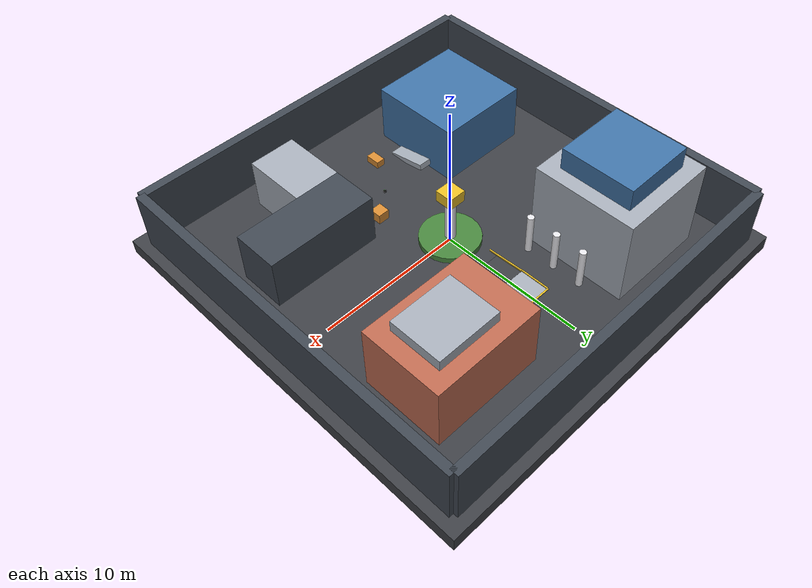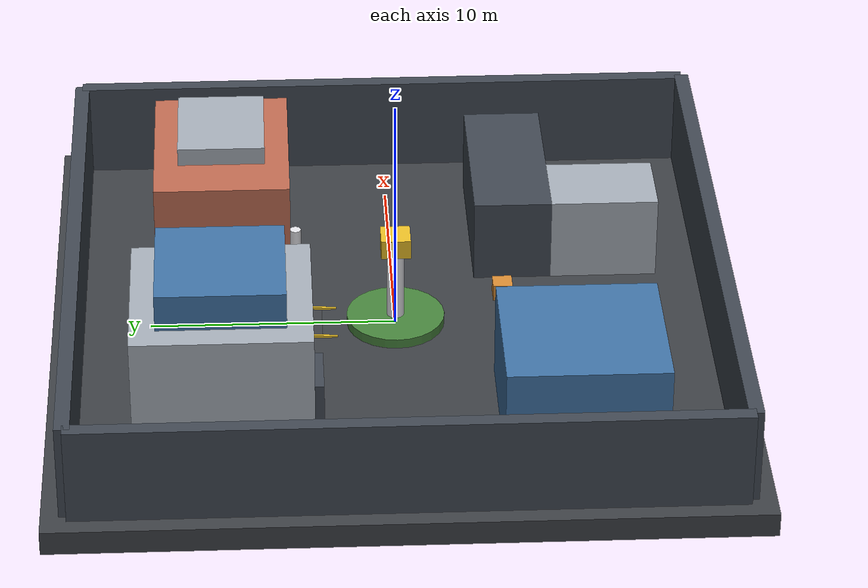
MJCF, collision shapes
<mujoco model="urban_proving_ground">
  <compiler angle="radian" meshdir="../models/turtlebot3/meshes" autolimits="true"/>

  <option timestep="0.005" integrator="implicitfast" gravity="0 0 -9.81"/>

  <visual>
    <headlight diffuse="0.85 0.85 0.85" ambient="0.45 0.45 0.45" specular="0.15 0.15 0.15"/>
    <rgba haze="0 0 0 0"/>
    <global azimuth="-135" elevation="-25"/>
    <map znear="0.0005" zfar="60.0"/>
  </visual>

  <asset>
    <!-- 天空盒与环境贴图 -->
    <texture type="skybox" builtin="gradient" rgb1="0.5 0.72 0.95" rgb2="0.2 0.35 0.55" width="512" height="512"/>
    <texture name="asphalt_tex" type="2d" builtin="checker" rgb1="0.22 0.23 0.25" rgb2="0.26 0.27 0.29" width="512" height="512" mark="cross" markrgb="0.38 0.38 0.38"/>
    <material name="asphalt_mat" texture="asphalt_tex" texrepeat="12 12" reflectance="0.0" roughness="0.9"/>

    <!-- 建筑与装饰材质 -->
    <material name="building_grey" rgba="0.65 0.68 0.72 1" reflectance="0.1"/>
    <material name="building_glass" rgba="0.25 0.45 0.65 1" reflectance="0.4"/>
    <material name="building_brick" rgba="0.75 0.42 0.32 1" reflectance="0.05"/>
    <material name="building_dark" rgba="0.25 0.28 0.32 1" reflectance="0.1"/>
    <material name="pillar_white" rgba="0.9 0.9 0.92 1" reflectance="0.2"/>
    <material name="curb_yellow" rgba="0.92 0.75 0.15 1" reflectance="0.1"/>
    <material name="grass_green" rgba="0.28 0.52 0.24 1" reflectance="0.05"/>
    <material name="obstacle_box" rgba="0.85 0.55 0.2 1" reflectance="0.1"/>
  </asset>

  <worldbody>
    <!-- 定向日光主光源与环境补光 -->
    <light pos="5 -5 18" dir="-0.3 0.3 -1" directional="true" diffuse="1.05 1.02 0.98" specular="0.35 0.35 0.35" castshadow="true"/>
    <light pos="-6 6 12" dir="0.3 -0.3 -0.8" directional="true" diffuse="0.45 0.48 0.52" specular="0.1 0.1 0.1"/>

    <!-- 全局高空透视监控相机 (Overview Cam) -->
    <camera name="overview_cam" pos="0 -15 12" xyaxes="1 0 0 0 0.64 0.77" fovy="65"/>

    <!-- 1. 地面基座 (28m x 28m 实心沥青厚板地面，无重叠、无透空、无镜面倒影，绝对平整) -->
    <geom name="ground" type="box" size="14 14 0.5" pos="0 0 -0.5" material="asphalt_mat" friction="1.2 0.005 0.0001"/>

    <!-- 2. 外围封闭建筑群围墙 (高 4.0m，彻底防止小车出界，为激光雷达提供远距离大平面约束) -->
    <geom name="wall_north" type="box" size="13 0.3 2.0" pos="0 13 2.0" material="building_dark"/>
    <geom name="wall_south" type="box" size="13 0.3 2.0" pos="0 -13 2.0" material="building_dark"/>
    <geom name="wall_east"  type="box" size="0.3 13 2.0" pos="13 0 2.0" material="building_dark"/>
    <geom name="wall_west"  type="box" size="0.3 13 2.0" pos="-13 0 2.0" material="building_dark"/>

    <!-- 3. 西北部：高层科技塔楼 A (高 6.5m，带有双层阶梯与外挑平台) -->
    <body name="building_A" pos="-7 7 0">
      <geom type="box" size="3.5 3.5 3.0" pos="0 0 3.0" material="building_grey"/>
      <geom type="box" size="2.5 2.5 1.5" pos="0 0 6.0" material="building_glass"/>
      <!-- 外凸裙楼与入口门廊，创造丰富垂直与水平角点 -->
      <geom type="box" size="1.2 0.3 1.2" pos="0 -3.6 1.2" material="building_dark"/>
    </body>

    <!-- 4. 东北部：现代商业综合体 B (高 4.5m，砖红色质感，凹凸窗套立面) -->
    <body name="building_B" pos="7 7 0">
      <geom type="box" size="3.8 2.8 2.25" pos="0 0 2.25" material="building_brick"/>
      <geom type="box" size="2.2 1.8 1.0" pos="0.5 0 4.25" material="building_grey"/>
      <!-- 街道转角侧边防撞柱 -->
      <geom type="cylinder" size="0.15 0.6" pos="-3.2 -2.2 0.6" material="pillar_white"/>
      <geom type="cylinder" size="0.15 0.6" pos="-3.2 -1.2 0.6" material="pillar_white"/>
    </body>

    <!-- 5. 东南部：L 型院落与走廊街道 C (高 3.5m，形成狭窄巷道 Alleyway) -->
    <body name="building_C" pos="7 -7 0">
      <geom type="box" size="3.8 1.6 1.75" pos="0 2.0 1.75" material="building_dark"/>
      <geom type="box" size="1.6 2.2 1.75" pos="-2.2 -1.8 1.75" material="building_grey"/>
    </body>

    <!-- 6. 西南部：立体研发独栋 D + 缓坡台阶 Ramp (测试 IMU 俯仰角与坡道 3D 点云) -->
    <body name="building_D" pos="-7 -7 0">
      <geom type="box" size="3.2 3.2 2.0" pos="0 0 2.0" material="building_glass"/>
      <!-- 缓坡坡道 (倾角约 12 度，长 2.5m) -->
      <geom type="box" size="0.9 1.4 0.2" pos="3.2 0 0.2" euler="0.2 0 0" material="building_grey"/>
    </body>

    <!-- 7. 中央环岛与绿化景观 (构建天然环形道路闭环 Loop Closure) -->
    <body name="central_plaza" pos="0 0 0">
      <!-- 环岛中心圆台 -->
      <geom type="cylinder" size="2.0 0.2" pos="0 0 0.2" material="grass_green"/>
      <!-- 环岛中央雕塑立柱 (极佳的激光角点中心参考物) -->
      <geom type="cylinder" size="0.35 1.8" pos="0 0 1.8" material="pillar_white"/>
      <geom type="box" size="0.6 0.6 0.4" pos="0 0 3.8" material="curb_yellow"/>
    </body>

    <!-- 8. 立柱走廊 (Colonnade of Pillars：测试多线激光雷达角点与圆柱特征提取) -->
    <body name="colonnade" pos="0 0 0">
      <!-- 沿西侧主干道排列的一组标准化圆柱 -->
      <geom type="cylinder" size="0.22 1.4" pos="-2.8 4.0 1.4" material="pillar_white"/>
      <geom type="cylinder" size="0.22 1.4" pos="-2.8 6.0 1.4" material="pillar_white"/>
      <geom type="cylinder" size="0.22 1.4" pos="-2.8 8.0 1.4" material="pillar_white"/>

      <!-- 沿东侧主干道排列的立柱 -->
      <geom type="cylinder" size="0.22 1.4" pos="2.8 4.0 1.4" material="pillar_white"/>
      <geom type="cylinder" size="0.22 1.4" pos="2.8 6.0 1.4" material="pillar_white"/>
      <geom type="cylinder" size="0.22 1.4" pos="2.8 8.0 1.4" material="pillar_white"/>
    </body>

    <!-- 9. 街道局部几何障碍体 (用于测试局部避障规划与点云遮挡推算) -->
    <body name="street_obstacles" pos="0 0 0">
      <!-- 南侧道路上的几何箱子 -->
      <geom type="box" size="0.4 0.4 0.35" pos="1.8 -4.5 0.35" material="obstacle_box"/>
      <geom type="box" size="0.3 0.5 0.25" pos="-1.5 -8.5 0.25" material="obstacle_box"/>
      <!-- 北侧道路立柱附近的障碍圆柱桶 (移至立柱走廊内侧以保证高台通道宽敞) -->
      <geom type="cylinder" size="0.25 0.4" pos="2.0 5.5 0.4" material="curb_yellow"/>
    </body>

    <!-- 10. 北侧立体观景台与上坡坡道 (测试 2.5D 高程感知、越障爬坡与高台停驻) -->
    <body name="elevated_ramp_platform" pos="0 0 0">
      <!-- 零台阶平顺入地缓坡 (宽 2.0m，坡度仅 3.4 度/0.06rad，南端深沉入地消灭突唇，北侧无缝平顺衔接高台 Z=0.12m) -->
      <geom name="access_ramp" type="box" size="1.0 1.30 0.04" pos="0 3.7 0.002" euler="0.060 0 0" material="asphalt_mat" friction="1.5 0.005 0.0001"/>
      <geom name="access_ramp_base" type="box" size="1.05 1.30 0.10" pos="0 3.7 -0.10" group="3" material="building_dark"/>
      <!-- 高台基座 (标高 Z=0.12m，尺寸 2.2m x 2.0m，中心 Y=6.0，Z_pos=0.06) -->
      <geom name="platform_deck" type="box" size="1.1 1.0 0.06" pos="0 6.0 0.06" material="building_grey" friction="1.5 0.005 0.0001"/>
            <!-- 缓坡西侧防护警示护栏 -->
      <geom name="ramp_curb_west" type="box" size="0.05 1.30 0.06" pos="-1.05 3.7 0.08" euler="0.060 0 0" material="curb_yellow"/>
      <!-- 缓坡东侧防护警示护栏 -->
      <geom name="ramp_curb_east" type="box" size="0.05 1.30 0.06" pos="1.05 3.7 0.08" euler="0.060 0 0" material="curb_yellow"/>
      <!-- 高台西侧防护警示边沿 -->
      <geom type="box" size="0.05 1.0 0.03" pos="-1.1 6.0 0.15" material="curb_yellow"/>
      <!-- 高台东侧防护警示边沿 -->
      <geom type="box" size="0.05 1.0 0.03" pos="1.1 6.0 0.15" material="curb_yellow"/>
      <!-- 高台北侧防护警示边沿 -->
      <geom type="box" size="1.1 0.05 0.03" pos="0 7.05 0.15" material="curb_yellow"/>
    </body>
  </worldbody>

  <!-- 引入 TurtleBot3 Burger 移动机器人完整模型 -->
  <include file="../models/turtlebot3/turtlebot3_burger.xml"/>
</mujoco>

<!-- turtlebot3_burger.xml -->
<mujoco model="turtlebot3_burger">
  <compiler angle="radian" autolimits="true"/>

  <default>
    <default class="visual">
      <geom group="1" type="mesh" contype="0" conaffinity="0"/>
    </default>
    <default class="collision">
      <geom group="3" rgba="0 0 0 0" solref="0.01 1" solimp="0.9 0.95 0.001 0.5 2"/>
    </default>
    <default class="wheel">
      <geom group="0" type="cylinder" size="0.033 0.009" zaxis="0 1 0" friction="1.5 0.005 0.0001" condim="3" solref="0.01 1" solimp="0.9 0.95 0.001 0.5 2"/>
    </default>
  </default>

  <asset>
    <!-- 3D 视觉网格资产 (自包含 STL，相对路径由引用上层 meshdir 统一定义) -->
    <mesh name="burger_base" file="bases/burger_base.stl" scale="0.001 0.001 0.001"/>
    <mesh name="left_tire" file="wheels/left_tire.stl" scale="0.001 0.001 0.001"/>
    <mesh name="right_tire" file="wheels/right_tire.stl" scale="0.001 0.001 0.001"/>
    <mesh name="lds" file="sensors/lds.stl" scale="0.001 0.001 0.001"/>

    <!-- 材质配置 -->
    <material name="dark_grey" rgba="0.2 0.2 0.2 1"/>
    <material name="tire_black" rgba="0.1 0.1 0.1 1"/>
    <material name="sensor_black" rgba="0.05 0.05 0.05 1"/>
    <material name="accent_yellow" rgba="0.9 0.7 0.1 1"/>
  </asset>

  <worldbody>
    <!-- 机器人基座：初始预置于南侧车道 (0, -6.0, 0.03)，面朝正北 (绕 Z 轴旋转 90 度) -->
    <body name="base_link" pos="0 -6.0 0.010" euler="0 0 1.5707963">
      <freejoint name="root"/>
      <inertial mass="1.0" pos="-0.010 0 0.025" diaginertia="0.005 0.005 0.005"/>

      <!-- 底盘主体外观 (STL) -->
      <geom type="mesh" mesh="burger_base" pos="0 0 0" class="visual" material="dark_grey"/>
      <geom type="mesh" mesh="lds" pos="-0.032 0 0.172" class="visual" material="sensor_black"/>

      <!-- 底盘物理碰撞体 (加宽前部防护半径与防穿墙缓冲球，彻底杜绝相机穿墙) -->
      <geom type="cylinder" size="0.105 0.045" pos="0 0 0.065" class="collision" mass="0.80"/>
      <geom type="sphere" size="0.025" pos="0.080 0 0.065" class="collision" mass="0.02"/>

      <!-- 平衡稳定支点 (前后顺滑脚轮 + 高位防侧翻安全触点，杜绝多点地面超静定干涉) -->
      <geom type="sphere" size="0.006" pos="0.040 0 0.000" friction="0.01 0.005 0.0001" condim="1" class="collision" mass="0.02"/>
      <geom type="sphere" size="0.006" pos="-0.040 0 0.000" friction="0.01 0.005 0.0001" condim="1" class="collision" mass="0.02"/>
      <geom type="sphere" size="0.004" pos="0 0.065 0.012" friction="0.05 0.005 0.0001" condim="1" class="collision" mass="0.01"/>
      <geom type="sphere" size="0.004" pos="0 -0.065 0.012" friction="0.05 0.005 0.0001" condim="1" class="collision" mass="0.01"/>

      <!-- 车载前视第一人称感知相机 (FPV Driver & Perception Cam: 适度前移并抬高至 0.15m，仰俯微调至 -4.5° 黄金驾驶视野) -->
      <camera name="front_cam" pos="0.08 0 0.15" xyaxes="0 -1 0 0.08 0 0.997" fovy="60"/>

      <!-- 车载后向 45 度第三人称跟车俯瞰相机 (Third-person 45° Follow Cam) -->
      <camera name="third_person_cam" pos="-1.0 0 0.7" xyaxes="0 -1 0 0.58 0 0.81" fovy="60"/>

      <!-- 传感器安装站点 (Site) -->
      <site name="imu_site" pos="0 0 0.068" size="0.008" rgba="1 0 0 1"/>
      <site name="lidar_site" pos="-0.032 0 0.172" size="0.01" rgba="0 1 0 1"/>

      <!-- 左驱动轮 -->
      <body name="wheel_left_link" pos="0 0.080 0.023">
        <joint name="wheel_left_joint" type="hinge" axis="0 1 0" damping="0.12"/>
        <inertial mass="0.08" pos="0 0 0" diaginertia="0.0005 0.001 0.0005"/>
        <geom class="wheel" mass="0.05" material="tire_black"/>
        <geom type="mesh" mesh="left_tire" pos="0 0 0" class="visual" material="tire_black"/>
      </body>

      <!-- 右驱动轮 -->
      <body name="wheel_right_link" pos="0 -0.080 0.023">
        <joint name="wheel_right_joint" type="hinge" axis="0 1 0" damping="0.12"/>
        <inertial mass="0.08" pos="0 0 0" diaginertia="0.0005 0.001 0.0005"/>
        <geom class="wheel" mass="0.05" material="tire_black"/>
        <geom type="mesh" mesh="right_tire" pos="0 0 0" class="visual" material="tire_black"/>
      </body>
    </body>
  </worldbody>

  <actuator>
    <!-- 速度控制器：输入单位为 rad/s (提升最大扭矩储备至 2.5 N*m，确保爬坡充沛牵引力) -->
    <velocity name="wheel_left_motor" joint="wheel_left_joint" kv="1.5" forcerange="-2.5 2.5" ctrlrange="-25 25"/>
    <velocity name="wheel_right_motor" joint="wheel_right_joint" kv="1.5" forcerange="-2.5 2.5" ctrlrange="-25 25"/>
  </actuator>

  <sensor>
    <!-- 6 轴高频 IMU 动力学输出 -->
    <accelerometer name="imu_accel" site="imu_site"/>
    <gyro name="imu_gyro" site="imu_site"/>
  </sensor>
</mujoco>
